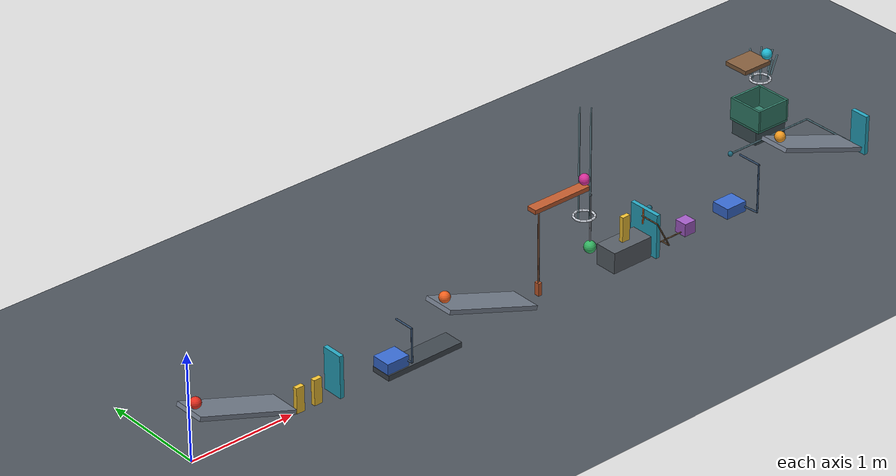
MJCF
<mujoco model="passive_chain_reaction">
  <compiler angle="degree" autolimits="true" inertiafromgeom="auto"/>
  <option timestep="0.002" gravity="0 0 -9.81" integrator="implicitfast" cone="elliptic" iterations="100" tolerance="1e-10"/>
  <size njmax="4000" nconmax="800"/>

  <!-- All initial joint velocities are zero. -->
  <!-- Contact damping ratio 0.6901 approximates restitution 0.05 for an isolated linear contact. -->
  <!-- Auxiliary striking arms have negligible mass; the specified moving-body masses are retained. -->
  <!-- The right launch guide starts above the pendulum pivot to avoid initial overlap. -->
  <!-- The bin plinth is narrower than its bottom plate to clear the flap2 crank arm. -->

  <visual>
    <global azimuth="110" elevation="-25"/>
    <headlight ambient="0.35 0.35 0.35" diffuse="0.65 0.65 0.65" specular="0.15 0.15 0.15"/>
    <map znear="0.01" zfar="50"/>
  </visual>

  <worldbody>
    <light name="overhead_light" pos="4 -3 7" dir="0 0 -1" diffuse="0.8 0.8 0.8"/>
    <camera name="overview" pos="4 -9 6.4" xyaxes="1 0 0 0 0.58 0.814"/>

    <geom name="floor" type="plane" size="15 8 0.1" friction="0.70 0.005 0.0001" condim="6" solref="0.006 0.6901" rgba="0.30 0.33 0.36 1"/>

    <!-- Ramp top endpoints: (0, 0, 0.492020) and (0.939693, 0, 0.150000). -->
    <body name="ramp1" pos="0.463006 0 0.302216" quat="0.984807753 0 0.173648178 0">
      <geom name="ramp1_surface" type="box" size="0.50 0.15 0.02" friction="0.70 0.005 0.0001" condim="6" solref="0.006 0.6901" rgba="0.48 0.52 0.58 1"/>
    </body>

    <body name="ball1" pos="0.064086 0 0.521904">
      <freejoint name="ball1_free"/>
      <geom name="ball1_sphere" type="sphere" size="0.05" mass="0.20" friction="0.70 0.005 0.0001" condim="6" solref="0.006 0.6901" rgba="0.90 0.18 0.12 1"/>
    </body>

    <body name="domino1" pos="1.079693 0 0.12">
      <freejoint name="domino1_free"/>
      <geom name="domino1_box" type="box" size="0.04 0.02 0.12" mass="0.25" friction="0.70 0.005 0.0001" condim="6" solref="0.006 0.6901" rgba="0.95 0.76 0.20 1"/>
    </body>

    <body name="domino2" pos="1.259693 0 0.12">
      <freejoint name="domino2_free"/>
      <geom name="domino2_box" type="box" size="0.04 0.02 0.12" mass="0.25" friction="0.70 0.005 0.0001" condim="6" solref="0.006 0.6901" rgba="0.95 0.76 0.20 1"/>
    </body>

    <!-- Bottom-hinged flap: gravity assists its motion after domino2 tips it. -->
    <body name="flap1" pos="1.439693 0 0.02">
      <joint name="flap1_hinge" type="hinge" axis="0 1 0" range="0 65" damping="0.04" solreflimit="0.004 1" solimplimit="0.99 0.999 0.0001"/>
      <geom name="flap1_panel" type="box" pos="0 0 0.20" size="0.02 0.10 0.20" mass="0.30" friction="0.70 0.005 0.0001" condim="6" solref="0.006 0.6901" rgba="0.15 0.65 0.75 1"/>
    </body>

    <body name="cart1_rail" pos="2.184693 -0.15 0.123">
      <geom name="cart1_rail_box" type="box" size="0.385 0.10 0.025" friction="0.70 0.005 0.0001" condim="6" solref="0.006 0.6901" rgba="0.25 0.28 0.31 1"/>
    </body>

    <!-- The offset mast stays outside ramp2; its upper crossbar contacts ball2 after 0.45 m. -->
    <body name="cart1" pos="1.909693 -0.15 0.20">
      <joint name="cart1_slide" type="slide" axis="1 0 0" range="0 0.60" damping="0.20" solreflimit="0.004 1" solimplimit="0.99 0.999 0.0001"/>
      <geom name="cart1_box" type="box" size="0.11 0.09 0.05" mass="0.50" friction="0.70 0.005 0.0001" condim="6" solref="0.006 0.6901" rgba="0.22 0.42 0.82 1"/>
      <geom name="cart1_mast_base" type="capsule" fromto="0.09 0 0 0.11 -0.13 0" size="0.008" mass="0" friction="0.70 0.005 0.0001" condim="6" solref="0.006 0.6901" rgba="0.20 0.30 0.42 1"/>
      <geom name="cart1_mast" type="capsule" fromto="0.11 -0.13 0 0.11 -0.13 0.321904" size="0.008" mass="0" friction="0.70 0.005 0.0001" condim="6" solref="0.006 0.6901" rgba="0.20 0.30 0.42 1"/>
      <geom name="cart1_pusher" type="capsule" fromto="0.11 -0.13 0.321904 0.11 0.06 0.321904" size="0.008" mass="0" friction="0.70 0.005 0.0001" condim="6" solref="0.006 0.6901" rgba="0.20 0.30 0.42 1"/>
    </body>

    <body name="ramp2" pos="2.926613 -0.09 0.302216" quat="0.984807753 0 0.173648178 0">
      <geom name="ramp2_surface" type="box" size="0.50 0.15 0.02" friction="0.70 0.005 0.0001" condim="6" solref="0.006 0.6901" rgba="0.48 0.52 0.58 1"/>
    </body>

    <body name="ball2" pos="2.527693 -0.09 0.521904">
      <freejoint name="ball2_free"/>
      <geom name="ball2_sphere" type="sphere" size="0.05" mass="0.20" friction="0.70 0.005 0.0001" condim="6" solref="0.006 0.6901" rgba="0.94 0.38 0.12 1"/>
    </body>

    <!-- An offset, hanging striker transmits the low ramp exit impact to the elevated left lever end. -->
    <!-- The spring is initially restrained by ball3's weight and assists after the impact. -->
    <body name="lever1" pos="3.841300 0 0.90">
      <inertial pos="0 0 0" mass="0.50" diaginertia="0.000483333 0.015066667 0.015416667"/>
      <joint name="lever1_hinge" type="hinge" axis="0 -1 0" range="0 45" damping="0.04" stiffness="0.70" springref="45" solreflimit="0.004 1" solimplimit="0.99 0.999 0.0001"/>
      <geom name="lever1_beam" type="box" size="0.30 0.05 0.02" mass="0" friction="0.70 0.005 0.0001" condim="6" solref="0.006 0.6901" rgba="0.76 0.36 0.18 1"/>
      <geom name="lever1_striker_arm" type="capsule" fromto="-0.30 -0.09 0 -0.30 -0.09 -0.68" size="0.008" mass="0" friction="0.70 0.005 0.0001" condim="6" solref="0.006 0.6901" rgba="0.42 0.28 0.20 1"/>
      <geom name="lever1_striker_plate" type="box" pos="-0.30 -0.09 -0.71" size="0.018 0.025 0.06" mass="0" friction="0.70 0.005 0.0001" condim="6" solref="0.006 0.6901" rgba="0.76 0.36 0.18 1"/>
    </body>

    <body name="ball3" pos="4.126300 0 0.97">
      <freejoint name="ball3_free"/>
      <geom name="ball3_sphere" type="sphere" size="0.05" mass="0.20" friction="0.70 0.005 0.0001" condim="6" solref="0.006 0.6901" rgba="0.84 0.18 0.60 1"/>
    </body>

    <!-- Twelve capsule segments give a minimum clear diameter of 0.16 m. -->
    <!-- The interrupted left guide leaves clearance for the launching lever. -->
    <body name="ring1" pos="4.126300 0 0.62">
      <geom name="ring1_segment01" type="capsule" fromto="0.093175 0 0 0.080692 0.046587 0" size="0.01" friction="0.70 0.005 0.0001" condim="6" solref="0.006 0.6901" rgba="0.80 0.82 0.86 1"/>
      <geom name="ring1_segment02" type="capsule" fromto="0.080692 0.046587 0 0.046587 0.080692 0" size="0.01" friction="0.70 0.005 0.0001" condim="6" solref="0.006 0.6901" rgba="0.80 0.82 0.86 1"/>
      <geom name="ring1_segment03" type="capsule" fromto="0.046587 0.080692 0 0 0.093175 0" size="0.01" friction="0.70 0.005 0.0001" condim="6" solref="0.006 0.6901" rgba="0.80 0.82 0.86 1"/>
      <geom name="ring1_segment04" type="capsule" fromto="0 0.093175 0 -0.046587 0.080692 0" size="0.01" friction="0.70 0.005 0.0001" condim="6" solref="0.006 0.6901" rgba="0.80 0.82 0.86 1"/>
      <geom name="ring1_segment05" type="capsule" fromto="-0.046587 0.080692 0 -0.080692 0.046587 0" size="0.01" friction="0.70 0.005 0.0001" condim="6" solref="0.006 0.6901" rgba="0.80 0.82 0.86 1"/>
      <geom name="ring1_segment06" type="capsule" fromto="-0.080692 0.046587 0 -0.093175 0 0" size="0.01" friction="0.70 0.005 0.0001" condim="6" solref="0.006 0.6901" rgba="0.80 0.82 0.86 1"/>
      <geom name="ring1_segment07" type="capsule" fromto="-0.093175 0 0 -0.080692 -0.046587 0" size="0.01" friction="0.70 0.005 0.0001" condim="6" solref="0.006 0.6901" rgba="0.80 0.82 0.86 1"/>
      <geom name="ring1_segment08" type="capsule" fromto="-0.080692 -0.046587 0 -0.046587 -0.080692 0" size="0.01" friction="0.70 0.005 0.0001" condim="6" solref="0.006 0.6901" rgba="0.80 0.82 0.86 1"/>
      <geom name="ring1_segment09" type="capsule" fromto="-0.046587 -0.080692 0 0 -0.093175 0" size="0.01" friction="0.70 0.005 0.0001" condim="6" solref="0.006 0.6901" rgba="0.80 0.82 0.86 1"/>
      <geom name="ring1_segment10" type="capsule" fromto="0 -0.093175 0 0.046587 -0.080692 0" size="0.01" friction="0.70 0.005 0.0001" condim="6" solref="0.006 0.6901" rgba="0.80 0.82 0.86 1"/>
      <geom name="ring1_segment11" type="capsule" fromto="0.046587 -0.080692 0 0.080692 -0.046587 0" size="0.01" friction="0.70 0.005 0.0001" condim="6" solref="0.006 0.6901" rgba="0.80 0.82 0.86 1"/>
      <geom name="ring1_segment12" type="capsule" fromto="0.080692 -0.046587 0 0.093175 0 0" size="0.01" friction="0.70 0.005 0.0001" condim="6" solref="0.006 0.6901" rgba="0.80 0.82 0.86 1"/>
      <geom name="ring1_guide_right" type="capsule" fromto="0.067 0 0.20 0.067 0 1.00" size="0.006" friction="0.70 0.005 0.0001" condim="6" solref="0.006 0.6901" rgba="0.45 0.65 0.70 0.55"/>
      <geom name="ring1_guide_front" type="capsule" fromto="0 -0.067 0 0 -0.067 1.00" size="0.006" friction="0.70 0.005 0.0001" condim="6" solref="0.006 0.6901" rgba="0.45 0.65 0.70 0.55"/>
      <geom name="ring1_guide_back" type="capsule" fromto="0 0.067 0 0 0.067 1.00" size="0.006" friction="0.70 0.005 0.0001" condim="6" solref="0.006 0.6901" rgba="0.45 0.65 0.70 0.55"/>
      <geom name="ring1_guide_left_lower" type="capsule" fromto="-0.067 0 0 -0.067 0 0.22" size="0.006" friction="0.70 0.005 0.0001" condim="6" solref="0.006 0.6901" rgba="0.45 0.65 0.70 0.55"/>
      <geom name="ring1_guide_left_upper" type="capsule" fromto="-0.067 0 0.412 -0.067 0 1.00" size="0.006" friction="0.70 0.005 0.0001" condim="6" solref="0.006 0.6901" rgba="0.45 0.65 0.70 0.55"/>
    </body>

    <!-- The ball strikes the bob off-center, providing a tangential pendulum impulse. -->
    <!-- Total pendulum mass is 0.35 kg, with 0.20 kg concentrated near the pivot. -->
    <body name="pendulum1" pos="4.196300 0 0.791738">
      <joint name="pendulum1_hinge" type="hinge" axis="0 -1 0" range="0 40" damping="0.04" solreflimit="0.004 1" solimplimit="0.99 0.999 0.0001"/>
      <geom name="pendulum1_pivot_mass" type="sphere" size="0.012" mass="0.20" friction="0.70 0.005 0.0001" condim="6" solref="0.006 0.6901" rgba="0.28 0.30 0.34 1"/>
      <geom name="pendulum1_rod" type="capsule" fromto="0 0 0 0 0 -0.50" size="0.008" mass="0.05" friction="0.70 0.005 0.0001" condim="6" solref="0.006 0.6901" rgba="0.48 0.50 0.54 1"/>
      <geom name="pendulum1_bob" type="sphere" pos="0 0 -0.50" size="0.055" mass="0.10" friction="0.70 0.005 0.0001" condim="6" solref="0.006 0.6901" rgba="0.20 0.70 0.38 1"/>
    </body>

    <body name="domino3_platform" pos="4.587 0 0.10">
      <geom name="domino3_platform_box" type="box" size="0.21 0.11 0.10" friction="0.70 0.005 0.0001" condim="6" solref="0.006 0.6901" rgba="0.34 0.37 0.40 1"/>
    </body>

    <!-- Bob first contact is placed near a 0.32 m arc; the hinge stop remains at 40 degrees. -->
    <body name="domino3" pos="4.589897 0 0.32">
      <freejoint name="domino3_free"/>
      <geom name="domino3_box" type="box" size="0.04 0.02 0.12" mass="0.25" friction="0.70 0.005 0.0001" condim="6" solref="0.006 0.6901" rgba="0.95 0.76 0.20 1"/>
    </body>

    <!-- A spring-powered, bottom-hinged door is initially blocked by an axial latch. -->
    <body name="door1" pos="4.829897 0 0">
      <joint name="door1_hinge" type="hinge" axis="0 1 0" range="0 70" damping="0.04" stiffness="1.23" springref="70" solreflimit="0.004 1" solimplimit="0.99 0.999 0.0001"/>
      <geom name="door1_panel" type="box" pos="0 0 0.21" size="0.02 0.16 0.21" mass="0.45" friction="0.70 0.005 0.0001" condim="6" solref="0.006 0.6901" rgba="0.15 0.65 0.75 1"/>
      <geom name="door1_low_striker" type="sphere" pos="0.04 0 0.405" size="0.025" mass="0" friction="0.70 0.005 0.0001" condim="6" solref="0.006 0.6901" rgba="0.12 0.42 0.50 1"/>
    </body>

    <!-- Domino3 strikes the latch paddle beside the door. A small detent prevents numerical release. -->
    <body name="door1_latch" pos="5.149897 -0.10 0.10">
      <inertial pos="-0.14 0 0.09" mass="0.03" diaginertia="0.001 0.001 0.0016"/>
      <joint name="door1_latch_hinge" type="hinge" axis="0 0 1" range="-100 0" damping="0.04" frictionloss="0.025" solreflimit="0.004 1" solimplimit="0.99 0.999 0.0001"/>
      <geom name="door1_latch_bar" type="capsule" fromto="-0.294 0 0 0 0 0" size="0.006" mass="0" friction="0.70 0.005 0.0001" condim="6" solref="0.006 0.6901" rgba="0.40 0.30 0.20 1"/>
      <geom name="door1_latch_sidearm" type="capsule" fromto="-0.22 0 0 -0.22 -0.09 0" size="0.006" mass="0" friction="0.70 0.005 0.0001" condim="6" solref="0.006 0.6901" rgba="0.40 0.30 0.20 1"/>
      <geom name="door1_latch_outerarm" type="capsule" fromto="-0.22 -0.09 0 -0.36 -0.09 0.26" size="0.006" mass="0" friction="0.70 0.005 0.0001" condim="6" solref="0.006 0.6901" rgba="0.40 0.30 0.20 1"/>
      <geom name="door1_latch_crossarm" type="capsule" fromto="-0.36 -0.09 0.26 -0.36 0.10 0.26" size="0.006" mass="0" friction="0.70 0.005 0.0001" condim="6" solref="0.006 0.6901" rgba="0.40 0.30 0.20 1"/>
      <geom name="door1_latch_paddle" type="capsule" fromto="-0.349 0.10 0.18 -0.349 0.10 0.32" size="0.007" mass="0" friction="0.70 0.005 0.0001" condim="6" solref="0.006 0.6901" rgba="0.82 0.42 0.18 1"/>
    </body>

    <body name="block1" pos="5.299897 0 0.0605">
      <freejoint name="block1_free"/>
      <geom name="block1_box" type="box" size="0.06 0.06 0.06" mass="0.35" friction="0.70 0.005 0.0001" condim="6" solref="0.006 0.6901" rgba="0.64 0.36 0.78 1"/>
    </body>

    <!-- Cart2 clears the floor by 1.5 mm and is supported by its slide constraint. -->
    <body name="cart2" pos="5.819897 0 0.0515">
      <joint name="cart2_slide" type="slide" axis="1 0 0" range="0 0.58" damping="0.20" solreflimit="0.004 1" solimplimit="0.99 0.999 0.0001"/>
      <geom name="cart2_box" type="box" size="0.11 0.09 0.05" mass="0.50" friction="0.70 0.005 0.0001" condim="6" solref="0.006 0.6901" rgba="0.22 0.42 0.82 1"/>
      <geom name="cart2_mast_base" type="capsule" fromto="0.09 0 0 0.11 -0.23 0" size="0.008" mass="0" friction="0.70 0.005 0.0001" condim="6" solref="0.006 0.6901" rgba="0.20 0.30 0.42 1"/>
      <geom name="cart2_mast" type="capsule" fromto="0.11 -0.23 0 0.11 -0.23 0.470404" size="0.008" mass="0" friction="0.70 0.005 0.0001" condim="6" solref="0.006 0.6901" rgba="0.20 0.30 0.42 1"/>
      <geom name="cart2_pusher" type="capsule" fromto="0.11 -0.23 0.470404 0.11 0 0.470404" size="0.008" mass="0" friction="0.70 0.005 0.0001" condim="6" solref="0.006 0.6901" rgba="0.20 0.30 0.42 1"/>
    </body>

    <body name="ramp3" pos="6.806818 0 0.302216" quat="0.984807753 0 0.173648178 0">
      <geom name="ramp3_surface" type="box" size="0.50 0.15 0.02" friction="0.70 0.005 0.0001" condim="6" solref="0.006 0.6901" rgba="0.48 0.52 0.58 1"/>
    </body>

    <body name="ball4" pos="6.407897 0 0.521904">
      <freejoint name="ball4_free"/>
      <geom name="ball4_sphere" type="sphere" size="0.05" mass="0.20" friction="0.70 0.005 0.0001" condim="6" solref="0.006 0.6901" rgba="0.94 0.60 0.12 1"/>
    </body>

    <!-- A lateral crank lets the low flap knock the ball at the elevated shelf edge. -->
    <body name="flap2" pos="7.403504 0 0.01">
      <joint name="flap2_hinge" type="hinge" axis="0 1 0" range="0 60" damping="0.04" solreflimit="0.004 1" solimplimit="0.99 0.999 0.0001"/>
      <geom name="flap2_panel" type="box" pos="0 0 0.19" size="0.02 0.09 0.19" mass="0.28" friction="0.70 0.005 0.0001" condim="6" solref="0.006 0.6901" rgba="0.15 0.65 0.75 1"/>
      <geom name="flap2_lateral_arm" type="capsule" fromto="0 0 0.04 0 0.649 0.04" size="0.008" mass="0" friction="0.70 0.005 0.0001" condim="6" solref="0.006 0.6901" rgba="0.28 0.40 0.44 1"/>
      <geom name="flap2_crank_arm" type="capsule" fromto="0 0.649 0.04 -0.947 0.649 0.04" size="0.008" mass="0" friction="0.70 0.005 0.0001" condim="6" solref="0.006 0.6901" rgba="0.28 0.40 0.44 1"/>
      <geom name="flap2_shelf_striker" type="sphere" pos="-0.947 0.649 0.04" size="0.024" mass="0" friction="0.70 0.005 0.0001" condim="6" solref="0.006 0.6901" rgba="0.12 0.42 0.50 1"/>
    </body>

    <!-- Shelf top is at 0.80 m; ball5 starts immediately inside its exit edge. -->
    <body name="shelf1" pos="6.785504 0.80 0.78">
      <geom name="shelf1_board" type="box" size="0.15 0.125 0.02" friction="0.70 0.005 0.0001" condim="6" solref="0.006 0.6901" rgba="0.52 0.37 0.24 1"/>
    </body>

    <body name="ball5" pos="6.934504 0.72 0.85">
      <freejoint name="ball5_free"/>
      <geom name="ball5_sphere" type="sphere" size="0.05" mass="0.20" friction="0.70 0.005 0.0001" condim="6" solref="0.006 0.6901" rgba="0.12 0.72 0.82 1"/>
    </body>

    <!-- Ring2 is 0.30 m below ball5's initial center. Open guide ribs funnel the shelf exit. -->
    <body name="ring2" pos="6.965504 0.82 0.55">
      <geom name="ring2_segment01" type="capsule" fromto="0.093175 0 0 0.080692 0.046587 0" size="0.01" friction="0.70 0.005 0.0001" condim="6" solref="0.006 0.6901" rgba="0.80 0.82 0.86 1"/>
      <geom name="ring2_segment02" type="capsule" fromto="0.080692 0.046587 0 0.046587 0.080692 0" size="0.01" friction="0.70 0.005 0.0001" condim="6" solref="0.006 0.6901" rgba="0.80 0.82 0.86 1"/>
      <geom name="ring2_segment03" type="capsule" fromto="0.046587 0.080692 0 0 0.093175 0" size="0.01" friction="0.70 0.005 0.0001" condim="6" solref="0.006 0.6901" rgba="0.80 0.82 0.86 1"/>
      <geom name="ring2_segment04" type="capsule" fromto="0 0.093175 0 -0.046587 0.080692 0" size="0.01" friction="0.70 0.005 0.0001" condim="6" solref="0.006 0.6901" rgba="0.80 0.82 0.86 1"/>
      <geom name="ring2_segment05" type="capsule" fromto="-0.046587 0.080692 0 -0.080692 0.046587 0" size="0.01" friction="0.70 0.005 0.0001" condim="6" solref="0.006 0.6901" rgba="0.80 0.82 0.86 1"/>
      <geom name="ring2_segment06" type="capsule" fromto="-0.080692 0.046587 0 -0.093175 0 0" size="0.01" friction="0.70 0.005 0.0001" condim="6" solref="0.006 0.6901" rgba="0.80 0.82 0.86 1"/>
      <geom name="ring2_segment07" type="capsule" fromto="-0.093175 0 0 -0.080692 -0.046587 0" size="0.01" friction="0.70 0.005 0.0001" condim="6" solref="0.006 0.6901" rgba="0.80 0.82 0.86 1"/>
      <geom name="ring2_segment08" type="capsule" fromto="-0.080692 -0.046587 0 -0.046587 -0.080692 0" size="0.01" friction="0.70 0.005 0.0001" condim="6" solref="0.006 0.6901" rgba="0.80 0.82 0.86 1"/>
      <geom name="ring2_segment09" type="capsule" fromto="-0.046587 -0.080692 0 0 -0.093175 0" size="0.01" friction="0.70 0.005 0.0001" condim="6" solref="0.006 0.6901" rgba="0.80 0.82 0.86 1"/>
      <geom name="ring2_segment10" type="capsule" fromto="0 -0.093175 0 0.046587 -0.080692 0" size="0.01" friction="0.70 0.005 0.0001" condim="6" solref="0.006 0.6901" rgba="0.80 0.82 0.86 1"/>
      <geom name="ring2_segment11" type="capsule" fromto="0.046587 -0.080692 0 0.080692 -0.046587 0" size="0.01" friction="0.70 0.005 0.0001" condim="6" solref="0.006 0.6901" rgba="0.80 0.82 0.86 1"/>
      <geom name="ring2_segment12" type="capsule" fromto="0.080692 -0.046587 0 0.093175 0 0" size="0.01" friction="0.70 0.005 0.0001" condim="6" solref="0.006 0.6901" rgba="0.80 0.82 0.86 1"/>
      <geom name="ring2_funnel01" type="capsule" fromto="0.093175 0 0.05 0.14 0 0.24" size="0.008" friction="0.70 0.005 0.0001" condim="6" solref="0.006 0.6901" rgba="0.45 0.65 0.70 0.65"/>
      <geom name="ring2_funnel02" type="capsule" fromto="0.065885 0.065885 0.05 0.098995 0.098995 0.24" size="0.008" friction="0.70 0.005 0.0001" condim="6" solref="0.006 0.6901" rgba="0.45 0.65 0.70 0.65"/>
      <geom name="ring2_funnel03" type="capsule" fromto="0 0.093175 0.05 0 0.14 0.24" size="0.008" friction="0.70 0.005 0.0001" condim="6" solref="0.006 0.6901" rgba="0.45 0.65 0.70 0.65"/>
      <geom name="ring2_funnel04" type="capsule" fromto="-0.065885 0.065885 0.05 -0.098995 0.098995 0.24" size="0.008" friction="0.70 0.005 0.0001" condim="6" solref="0.006 0.6901" rgba="0.45 0.65 0.70 0.65"/>
      <geom name="ring2_funnel05" type="capsule" fromto="-0.093175 0 0.05 -0.14 0 0.24" size="0.008" friction="0.70 0.005 0.0001" condim="6" solref="0.006 0.6901" rgba="0.45 0.65 0.70 0.65"/>
      <geom name="ring2_funnel06" type="capsule" fromto="-0.065885 -0.065885 0.05 -0.098995 -0.098995 0.24" size="0.008" friction="0.70 0.005 0.0001" condim="6" solref="0.006 0.6901" rgba="0.45 0.65 0.70 0.65"/>
      <geom name="ring2_funnel07" type="capsule" fromto="0 -0.093175 0.05 0 -0.14 0.24" size="0.008" friction="0.70 0.005 0.0001" condim="6" solref="0.006 0.6901" rgba="0.45 0.65 0.70 0.65"/>
      <geom name="ring2_funnel08" type="capsule" fromto="0.065885 -0.065885 0.05 0.098995 -0.098995 0.24" size="0.008" friction="0.70 0.005 0.0001" condim="6" solref="0.006 0.6901" rgba="0.45 0.65 0.70 0.65"/>
    </body>

    <!-- Inner floor at 0.15 m gives a final ball-center height of 0.20 m. -->
    <!-- Inner footprint is 0.32 by 0.32 m; walls are 0.20 m high and 0.02 m thick. -->
    <body name="bin1" pos="6.965504 0.82 0.15">
      <geom name="bin1_plinth" type="box" pos="0 0 -0.085" size="0.18 0.15 0.065" friction="0.70 0.005 0.0001" condim="6" solref="0.006 0.6901" rgba="0.25 0.32 0.34 1"/>
      <geom name="bin1_bottom" type="box" pos="0 0 -0.01" size="0.18 0.18 0.01" friction="0.70 0.005 0.0001" condim="6" solref="0.006 0.6901" rgba="0.20 0.50 0.42 1"/>
      <geom name="bin1_wall_left" type="box" pos="-0.17 0 0.10" size="0.01 0.18 0.10" friction="0.70 0.005 0.0001" condim="6" solref="0.006 0.6901" rgba="0.20 0.50 0.42 1"/>
      <geom name="bin1_wall_right" type="box" pos="0.17 0 0.10" size="0.01 0.18 0.10" friction="0.70 0.005 0.0001" condim="6" solref="0.006 0.6901" rgba="0.20 0.50 0.42 1"/>
      <geom name="bin1_wall_front" type="box" pos="0 -0.17 0.10" size="0.16 0.01 0.10" friction="0.70 0.005 0.0001" condim="6" solref="0.006 0.6901" rgba="0.20 0.50 0.42 1"/>
      <geom name="bin1_wall_back" type="box" pos="0 0.17 0.10" size="0.16 0.01 0.10" friction="0.70 0.005 0.0001" condim="6" solref="0.006 0.6901" rgba="0.20 0.50 0.42 1"/>
    </body>
  </worldbody>

  <keyframe>
    <key name="start" time="0"/>
  </keyframe>
</mujoco>
